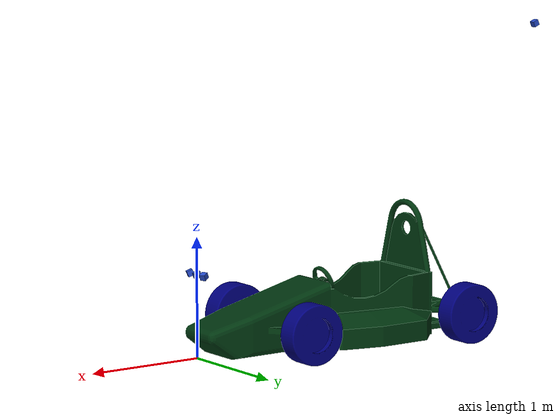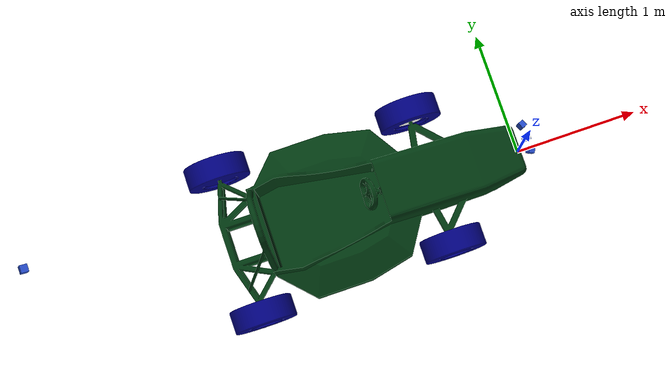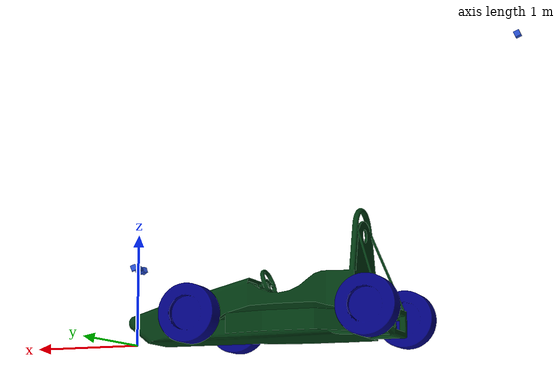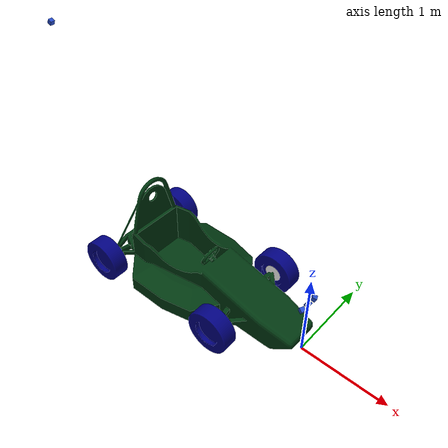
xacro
<?xml version="1.0" ?>
<!-- |    This document was autogenerated by xacro from /home/ros/fs_ws/install/fs_description/share/fs_description/robots/FS_Vehicle_Mesh.urdf.xacro | -->
<!-- |    EDITING THIS FILE BY HAND IS NOT RECOMMENDED                                 | -->
<robot name="FS Car"
  xmlns:xacro="http://www.ros.org/wiki/xacro">

  <!-- Vehicle Mass-->
  <xacro:property name="Chassis_mass" value="180"/>
  <xacro:property name="Steering_assembly_mass" value="0.001"/>
  <!-- TODO: The actual value of Wheel_mass is 15. It was set to 1.5 to stop it from wobbling  -->
  <xacro:property name="Wheel_mass" value="1.5"/>
  <xacro:property name="camera_mass" value="0.005"/>

  <xacro:include filename="$(find fs_description)/sensors/single_camera.urdf.xacro" />

  <!-- Base link -->
  <xacro:property name="base_link_length" value="0.01"/>
  <xacro:property name="base_link_width" value="0.01"/>
  <xacro:property name="base_link_height" value="0.01"/>
  <link name="base_link">
    <visual>
      <geometry>
        <box size="${base_link_length} ${base_link_width} ${base_link_height}"/>
      </geometry>
    </visual>
  </link>

  <!-- Chassis START-->
  <joint name="base_joint" type="fixed">
    <parent link="base_link"/>
    <child link="chassis"/>
  </joint>

  <link name="chassis">
    <inertial>
      <origin rpy="0 0 0" xyz="-1.2226 1.9875E-05 0.20575"/>
      <mass value="${Chassis_mass}"/>
      <inertia ixx="20.536" ixy="0.006315" ixz="4.6455" iyy="109.9" iyz="-0.0023792" izz="119.33"/>
    </inertial>
    <visual>
      <origin rpy="0 0 0" xyz="0 0 0"/>
      <geometry>
        <mesh filename="file://$(find fs_description)/meshes/FS_Chassis.STL"/>
      </geometry>
      <material name="">
        <color rgba="0 0.21569 0.062745 1"/>
      </material>
    </visual>
    <collision>
      <origin rpy="0 0 0" xyz="0 0 0"/>
      <geometry>
        <mesh filename="file://$(find fs_description)/meshes/FS_Chassis.STL"/>
      </geometry>
    </collision>
  </link>

  <gazebo reference="Chassis">
    <!--Stiffness -->
    <kp>1000000.0</kp>
    <!--Dampening-->
    <kd>0.1</kd>
    <dampingFactor>0</dampingFactor>
    <material>Gazebo/White</material>
    <selfCollide>true</selfCollide>
    <turnGravityOff>false</turnGravityOff>
    <mu1 value="0.1"/>
    <mu2 value="0.1"/>
    <fdir1 value="0 0 0"/>
  </gazebo>
  <!-- Chassis END -->

  <!-- ================================= RIGHT FRONT ASSEMBLY  ================================ -->
  <link name="FR_Wheel">
    <inertial>
      <origin rpy="0 0 0" xyz="-0.042708 0 5.5511E-17"/>
      <mass value="${Wheel_mass}"/>
      <inertia ixx="0.4246" ixy="-1.0253E-18" ixz="3.6932E-19" iyy="0.24902" iyz="-2.6847E-18" izz="0.24902"/>
    </inertial>
    <visual>
      <origin rpy="0 0 0" xyz="0 0 0"/>
      <geometry>
        <mesh filename="file://$(find fs_description)/meshes/FS_FL_Wheel.STL"/>
      </geometry>
      <material name="">
        <color rgba="0 0 0.50196 1"/>
      </material>
    </visual>
    <collision>
      <origin rpy="1.5708 0 1.5708" xyz="-0.02 0 0"/>
      <geometry>
        <cylinder length="0.15" radius="0.25"/>
      </geometry>
    </collision>
  </link>
  <gazebo reference="FR_Wheel">
    <mu1 value="2.0"/>
    <mu2 value="2.0"/>
    <kp value="10000000.0"/>
    <kd value="1.0"/>
    <fdir1 value="0 1 0"/>
    <material>Gazebo/Blue</material>
  </gazebo>

  <link name="FR_Wheel_Steer">
    <inertial>
      <origin rpy="0 0 0" xyz="-0.101 2.7756E-17 0"/>
      <mass value="${Steering_assembly_mass}"/>
      <inertia ixx="0.00157" ixy="3.1038E-37" ixz="-4.4532E-37" iyy="0.00078756" iyz="-6.074E-39" izz="0.00078756"/>
    </inertial>
    <visual>
      <origin rpy="0 0 0" xyz="0 0 0"/>
      <geometry>
        <mesh filename="file://$(find fs_description)/meshes/FS_FR_Wheel_Steer.STL"/>
      </geometry>
      <material name="">
        <color rgba="1 1 1 1"/>
      </material>
    </visual>
    <collision>
      <origin rpy="1.5708 0 1.5708" xyz="0 0 0"/>
      <geometry>
        <cylinder length="0.001" radius="0.1"/>
      </geometry>
    </collision>
  </link>
  <gazebo reference="FR_Wheel_Steer">
    <mu1 value="2.0"/>
    <mu2 value="2.0"/>
    <kp value="10000000.0"/>
    <kd value="1.0"/>
    <fdir1 value="0 1 0"/>
    <material>Gazebo/White</material>
  </gazebo>

  <joint name="FR_hinge" type="revolute">
    <origin rpy="1.5708 0 -1.5708" xyz="-0.75017 -0.58331 0.203"/>
    <parent link="chassis"/>
    <child link="FR_Wheel_Steer"/>
    <axis xyz="0 1 0" rpy="0 0 0"/>
    <limit effort="100" lower="-0.5" upper="0.5" velocity="1"/>
    <dynamics damping="0.0" friction="0.0"/>
  </joint>

  <joint name="FR_rotate" type="continuous">
    <origin rpy="0 0 0" xyz="0 0 0"/>
    <parent link="FR_Wheel_Steer"/>
    <child link="FR_Wheel"/>
    <axis xyz="-1 0 0" rpy="0 0 0"/>
    <limit effort="100" velocity="50"/>
    <dynamics damping="0.0" friction="0.0"/>
  </joint>

  <transmission name="trans_right_wheel_hinge">
    <type>transmission_interface/SimpleTransmission</type>
    <joint name="FR_hinge">
      <hardwareInterface>EffortJointInterface</hardwareInterface>
    </joint>
    <actuator name="motor_right_wheel_front">
      <hardwareInterface>EffortJointInterface</hardwareInterface>
      <mechanicalReduction>1</mechanicalReduction>
    </actuator>
  </transmission>
  <transmission name="trans_right_wheel_rotate">
    <type>transmission_interface/SimpleTransmission</type>
    <joint name="FR_rotate">
      <hardwareInterface>EffortJointInterface</hardwareInterface>
    </joint>
    <actuator name="motor_right_wheel_rotate">
      <hardwareInterface>EffortJointInterface</hardwareInterface>
      <mechanicalReduction>1</mechanicalReduction>
    </actuator>
  </transmission>
  <!-- ================================= LEFT FRONT ASSEMBLY  ================================ -->
  <link name="FL_Wheel">
    <inertial>
      <origin rpy="0 0 0" xyz="-0.042708 0 -5.5511E-17"/>
      <mass value="${Wheel_mass}"/>
      <inertia ixx="0.4246" ixy="-3.8222E-18" ixz="-2.657E-18" iyy="0.24902" iyz="-1.1834E-18" izz="0.24902"/>
    </inertial>
    <visual>
      <origin rpy="0 0 0" xyz="0 0 0"/>
      <geometry>
        <mesh filename="file://$(find fs_description)/meshes/FS_FL_Wheel.STL"/>
      </geometry>
      <material name="">
        <color rgba="0 0 0.50196 1"/>
      </material>
    </visual>
    <collision>
      <origin rpy="1.5708 0 1.5708" xyz="-0.02 0 0"/>
      <geometry>
        <cylinder length="0.15" radius="0.25"/>
      </geometry>
    </collision>
  </link>
  <gazebo reference="FL_Wheel">
    <mu1 value="2.0"/>
    <mu2 value="2.0"/>
    <kp value="10000000.0"/>
    <kd value="1.0"/>
    <fdir1 value="0 1 0"/>
    <material>Gazebo/Blue</material>
  </gazebo>

  <link name="FL_Wheel_Steer">
    <inertial>
      <origin rpy="0 0 0" xyz="-0.101 1.1102E-16 -1.6653E-16"/>
      <mass value="${Steering_assembly_mass}"/>
      <inertia ixx="0.00157" ixy="3.1038E-37" ixz="-4.4532E-37" iyy="0.00078756" iyz="-6.074E-39" izz="0.00078756"/>
    </inertial>
    <visual>
      <origin rpy="0 0 0" xyz="0 0 0"/>
      <geometry>
        <mesh filename="file://$(find fs_description)/meshes/FS_FL_Wheel_Steer.STL"/>
      </geometry>
      <material name="">
        <color rgba="1 1 1 1"/>
      </material>
    </visual>
    <collision>
      <origin rpy="1.5708 0 1.5708" xyz="0 0 0"/>
      <geometry>
        <cylinder length="0.001" radius="0.1"/>
      </geometry>
    </collision>
  </link>
  <gazebo reference="FL_Wheel_Steer">
    <mu1 value="2.0"/>
    <mu2 value="2.0"/>
    <kp value="10000000.0"/>
    <kd value="1.0"/>
    <fdir1 value="0 1 0"/>
    <material>Gazebo/White</material>
  </gazebo>

  <joint name="FL_hinge" type="revolute">
    <origin rpy="1.5708 0 1.5708" xyz="-0.75017 0.58331 0.203"/>
    <parent link="chassis"/>
    <child link="FL_Wheel_Steer"/>
    <axis xyz="0 1 0" rpy="0 0 0"/>
    <limit effort="100" lower="-0.5" upper="0.5" velocity="1"/>
  </joint>

  <joint name="FL_rotate" type="continuous">
    <origin rpy="0 0 0" xyz="0 0 0"/>
    <parent link="FL_Wheel_Steer"/>
    <child link="FL_Wheel"/>
    <axis xyz="1 0 0" rpy="0 0 0"/>
    <dynamics damping="0.0" friction="0.0"/>
  </joint>

  <transmission name="trans_left_wheel_hing">
    <type>transmission_interface/SimpleTransmission</type>
    <joint name="FL_hinge">
      <hardwareInterface>EffortJointInterface</hardwareInterface>
    </joint>
    <actuator name="motor_left_wheel_front">
      <hardwareInterface>EffortJointInterface</hardwareInterface>
      <mechanicalReduction>1</mechanicalReduction>
    </actuator>
  </transmission>
  <transmission name="trans_left_wheel_rotate">
    <type>transmission_interface/SimpleTransmission</type>
    <joint name="FL_rotate">
      <hardwareInterface>EffortJointInterface</hardwareInterface>
    </joint>
    <actuator name="motor_left_wheel_rotate">
      <hardwareInterface>EffortJointInterface</hardwareInterface>
      <mechanicalReduction>1</mechanicalReduction>
    </actuator>
  </transmission>

  <!-- ================================= RIGHT WHEEL REAR ================================ -->
  <link name="RR_Wheel">
    <inertial>
      <origin rpy="0 0 0" xyz="-0.043684 -2.7756E-17 0"/>
      <mass value="${Wheel_mass}"/>
      <inertia ixx="0.42617" ixy="-2.1805E-18" ixz="-1.5663E-17" iyy="0.25083" iyz="4.6781E-18" izz="0.25083"/>
    </inertial>
    <visual>
      <origin rpy="0 0 -1.5708" xyz="0 0 0"/>
      <geometry>
        <mesh filename="file://$(find fs_description)/meshes/FS_RR_Wheel.STL"/>
      </geometry>
      <material name="">
        <color rgba="0 0 0.50196 1"/>
      </material>
    </visual>
    <collision>
      <origin rpy="0 1.5708 1.5708" xyz="0 0.02 0"/>
      <geometry>
        <cylinder length="0.15" radius="0.25"/>
      </geometry>
    </collision>
  </link>
  <gazebo reference="RR_Wheel">
    <mu1 value="2.0"/>
    <mu2 value="2.0"/>
    <kp value="10000000.0"/>
    <kd value="1.0"/>
    <fdir1 value="0 1 0"/>
    <material>Gazebo/Blue</material>
  </gazebo>
  <joint name="RR_rotate" type="continuous">
    <parent link="chassis"/>
    <child link="RR_Wheel"/>
    <origin rpy="0 0 0" xyz="-2.3271 -0.626 0.2"/>
    <axis rpy="0 0 0" xyz="0 1 0"/>
    <limit effort="0" velocity="0"/>
    <dynamics damping="0.0" friction="0.0"/>
  </joint>
  <!-- ================================= LEFT WHEEL REAR ================================ -->
  <link name="RL_Wheel">
    <inertial>
      <origin rpy="0 0 0" xyz="-0.043684 5.5511E-17 -6.6613E-16"/>
      <mass value="${Wheel_mass}"/>
      <inertia ixx="0.42617" ixy="8.1301E-18" ixz="1.5197E-17" iyy="0.25083" iyz="1.5428E-17" izz="0.25083"/>
    </inertial>
    <visual>
      <origin rpy="0 0 1.5708" xyz="0 0 0"/>
      <geometry>
        <mesh filename="file://$(find fs_description)/meshes/FS_RL_Wheel.STL"/>
      </geometry>
      <material name="">
        <color rgba="0 0 0.50196 1"/>
      </material>
    </visual>
    <collision>
      <origin rpy="0 1.5708 1.5708" xyz="0 -0.02 0"/>
      <geometry>
        <cylinder length="0.15" radius="0.25"/>
      </geometry>
    </collision>
  </link>
  <gazebo reference="RL_Wheel">
    <mu1 value="2.0"/>
    <mu2 value="2.0"/>
    <kp value="10000000.0"/>
    <kd value="1.0"/>
    <fdir1 value="0 1 0"/>
    <material>Gazebo/Blue</material>
  </gazebo>
  <joint name="RL_rotate" type="continuous">
    <parent link="chassis"/>
    <child link="RL_Wheel"/>
    <origin rpy="0 0 0" xyz="-2.3271 0.626 0.2"/>
    <origin rpy="0 0 0" xyz="-0.8765 0.8115 1.292"/>
    <axis rpy="0 0 0" xyz="0 1 0"/>
    <limit effort="0" velocity="0"/>
    <dynamics damping="0.0" friction="0.0"/>
  </joint>

  <!-- =========================================== OTHER ======================================== -->

  <!-- ========================================== CAMERA =========================================== -->
  <!-- Camera -->
  <!-- You can adjust the camera angle with the p in rpy, measured in radians. -->
  <!-- You can also increate the height of the camera by adding a number, in meters, -->
  <!-- to the z in xyz. For example, to simulate a camera mounted on a 1/2 meter post, -->
  <!-- we can replace the z value with ${wheelRadius+chassisHeight+0.5} -->

  <xacro:single_camera name="camera0" fov="1.8962634" camera_mass="${camera_mass}">
    <origin rpy="0 0.4 0.4" xyz="0 0.1 0.692" />
  </xacro:single_camera>
  <xacro:single_camera name="camera1" fov="1.8962634" camera_mass="${camera_mass}">
    <origin rpy="0 0.4 0" xyz="0 0 0.692"/>
  </xacro:single_camera>
  <xacro:single_camera name="camera2" fov="1.8962634" camera_mass="${camera_mass}">
    <origin rpy="0 0.4 -0.4" xyz="0 -0.1 0.692" />
  </xacro:single_camera>
  <xacro:single_camera name="camera_3pv" camera_mass="${camera_mass}">
    <origin xyz="-3.5 0 2.5" rpy="0 0.4 0" />
  </xacro:single_camera>

  <gazebo>
    <plugin filename="libgazebo_ros_ackermann_drive.so" name="ackermann_drive">

      <ros>
        <namespace>car</namespace>
        <remapping>cmd_vel:=cmd</remapping>
        <remapping>odom:=odom</remapping>
        <remapping>distance:=distance</remapping>
      </ros>

      <update_rate>100.0</update_rate>

      <!-- wheels -->
      <front_left_joint>FL_rotate</front_left_joint>
      <front_right_joint>FR_rotate</front_right_joint>
      <rear_left_joint>RL_rotate</rear_left_joint>
      <rear_right_joint>RR_rotate</rear_right_joint>
      <left_steering_joint>FL_hinge</left_steering_joint>
      <right_steering_joint>FR_hinge</right_steering_joint>

      <!-- Max absolute steer angle for tyre in radians-->
      <!-- Any cmd_vel angular z greater than this would be capped -->
      <max_steer>0.658</max_steer>

      <!-- Max absolute steering angle of steering wheel -->
      <max_steering_angle>7.85</max_steering_angle>

      <!-- Max absolute linear speed in m/s -->
      <max_speed>10</max_speed>

      <!-- PID tuning -->
      <left_steering_pid_gain>331.75 0 1</left_steering_pid_gain>
      <left_steering_i_range>0 0</left_steering_i_range>
      <right_steering_pid_gain>331.75 0 1</right_steering_pid_gain>
      <right_steering_i_range>0 0</right_steering_i_range>
      <linear_velocity_pid_gain>136.36 0 0.1433</linear_velocity_pid_gain>
      <linear_velocity_i_range>0 0</linear_velocity_i_range>

      <!-- output -->
      <publish_odom>true</publish_odom>
      <publish_odom_tf>true</publish_odom_tf>
      <publish_wheel_tf>true</publish_wheel_tf>
      <publish_distance>true</publish_distance>

      <odometry_frame>odom_frame</odometry_frame>
      <robot_base_frame>chassis</robot_base_frame>

    </plugin>
  </gazebo>

</robot>

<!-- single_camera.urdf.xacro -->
<robot xmlns:xacro="http://www.ros.org/wiki/xacro" name="single_camera">
    <xacro:macro name="box_inertia" params="x y z m">
        <inertia ixx="${m*(y*y+z*z)/12}" ixy = "0" ixz = "0" iyy="${m*(x*x+z*z)/12}" iyz = "0" izz="${m*(x*x+z*z)/12}" />
    </xacro:macro>

    <xacro:macro name="single_camera" params="name parent:=chassis fov:=1.6962634 resolution:=800 camera_mass=0.05 *origin">

        <joint name="${name}_joint" type="fixed">
            <xacro:insert_block name="origin" />
            <parent link="chassis"/>
            <child link="${name}"/>
        </joint>

        <link name="${name}">
            <collision>
                <origin xyz="0 0 0" rpy="0 0 0"/>
                <geometry>
                    <box size=".05 .05 .05"/>
                </geometry>
            </collision>

            <visual>
                <origin xyz="0 0 0" rpy="0 0 0"/>
                <geometry>
                    <box size=".05 .05 .05"/>
                </geometry>
                <material name="blue"/>
            </visual>

            <inertial>
                <mass value="${camera_mass}" />
                <origin xyz="0 0 0" rpy="0 0 0"/>
                <xacro:box_inertia x=".05" y=".05" z=".05" m="${camera_mass}" />
            </inertial>
        </link>

        <gazebo reference="${name}">
            <material>Gazebo/Blue</material>
            <sensor type="camera" name="${name}">
                <update_rate>30.0</update_rate>
                <camera name="${name}_head">
                    <horizontal_fov>${fov}</horizontal_fov>
                    <image>
                        <width>${resolution}</width>
                        <height>${resolution}</height>
                        <format>R8G8B8</format>
                    </image>
                    <clip>
                        <near>0.02</near>
                        <far>300</far>
                    </clip>
                </camera>
                <plugin name="camera_controller" filename="libgazebo_ros_camera.so">
                    <alwaysOn>true</alwaysOn>
                    <updateRate>0.0</updateRate>
                    <cameraName>${name}</cameraName>
                    <imageTopicName>image_raw</imageTopicName>
                    <cameraInfoTopicName>camera_info</cameraInfoTopicName>
                    <frameName>camera_link</frameName>
                    <hackBaseline>0.07</hackBaseline>
                    <distortionK1>0.0</distortionK1>
                    <distortionK2>0.0</distortionK2>
                    <distortionK3>0.0</distortionK3>
                    <distortionT1>0.0</distortionT1>
                    <distortionT2>0.0</distortionT2>
                </plugin>
            </sensor>
        </gazebo>
    </xacro:macro>

</robot>
